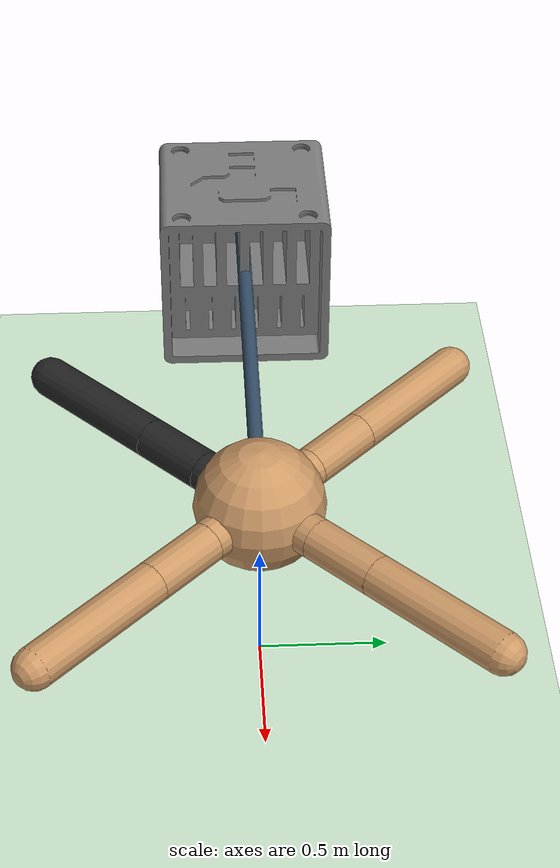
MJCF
<mujoco model="ant">
  <compiler angle="degree" coordinate="local" inertiafromgeom="true" />
  <option integrator="RK4" timestep="0.01" />
  <custom>
    <numeric data="0.0 0.0 0.55 1.0 0.0 0.0 0.0 0.0 1.0 0.0 -1.0 0.0 -1.0 0.0 1.0" name="init_qpos" />
  </custom>
  <default>
    <joint armature="1" damping="1" limited="true" />
    <geom conaffinity="0" condim="3" density="5.0" friction="0.79 0.3 0.3" margin="0.01" rgba="0.8 0.6 0.4 1" />
  </default>
  <asset>
    <texture builtin="gradient" height="100" rgb1="1 1 1" rgb2="0 0 0" type="skybox" width="100" />
    <texture builtin="flat" height="1278" mark="cross" markrgb="1 1 1" name="texgeom" random="0.01" rgb1="0.8 0.6 0.4" rgb2="0.8 0.6 0.4" type="cube" width="127" />
    <texture builtin="checker" height="100" name="texplane" rgb1="0 0 0" rgb2="0.8 0.8 0.8" type="2d" width="100" />
    <material name="MatPlane" reflectance="0.5" shininess="1" specular="1" texrepeat="60 60" texture="texplane" />
    <material name="geom" texture="texgeom" texuniform="true" />
  </asset>
  <compiler inertiafromgeom="auto" meshdir="meshes/" texturedir="./textures" />
  <include file="asset.xml" />
  <worldbody>
    <light cutoff="100" diffuse="1 1 1" dir="-0 0 -1.3" directional="true" exponent="1" pos="0 0 1.3" specular=".1 .1 .1" />
    <geom conaffinity="1" condim="3" material="MatPlane" name="floor" pos="0 0 0" rgba="0.8 0.9 0.8 1" size="40 40 40" type="plane" />
    <body name="torso" pos="0 0 0.75">
      <camera mode="trackcom" name="track" pos="0 -3 0.3" xyaxes="1 0 0 0 0 1" />
      <geom name="torso_geom" pos="0 0 0" size="0.25" type="sphere" />
      <joint armature="0" damping="0" limited="false" margin="0.01" name="root" pos="0 0 0" type="free" />
      <body name="front_left_leg" pos="0 0 0">
        <geom fromto="0.0 0.0 0.0 0.2 0.2 0.0" name="aux_1_geom" size="0.08" type="capsule" />
        <body name="aux_1" pos="0.2 0.2 0">
          <joint axis="0 0 1" name="hip_1" pos="0.0 0.0 0.0" range="-30 30" type="hinge" />
          <geom fromto="0.0 0.0 0.0 0.2 0.2 0.0" name="left_leg_geom" size="0.08" type="capsule" />
          <body pos="0.2 0.2 0">
            <joint axis="-1 1 0" name="ankle_1" pos="0.0 0.0 0.0" range="30 70" type="hinge" />
            <geom fromto="0.0 0.0 0.0 0.4 0.4 0.0" name="left_ankle_geom" size="0.08" type="capsule" />
          </body>
        </body>
      </body>
      <body name="front_right_leg" pos="0 0 0">
        <geom fromto="0.0 0.0 0.0 -0.2 0.2 0.0" name="aux_2_geom" size="0.08" type="capsule" />
        <body name="aux_2" pos="-0.2 0.2 0">
          <joint axis="0 0 1" name="hip_2" pos="0.0 0.0 0.0" range="-30 30" type="hinge" />
          <geom fromto="0.0 0.0 0.0 -0.2 0.2 0.0" name="right_leg_geom" size="0.08" type="capsule" />
          <body pos="-0.2 0.2 0">
            <joint axis="1 1 0" name="ankle_2" pos="0.0 0.0 0.0" range="-70 -30" type="hinge" />
            <geom fromto="0.0 0.0 0.0 -0.4 0.4 0.0" name="right_ankle_geom" size="0.08" type="capsule" />
          </body>
        </body>
      </body>
      <body name="back_leg" pos="0 0 0">
        <geom fromto="0.0 0.0 0.0 -0.2 -0.2 0.0" mass="0.62" name="aux_3_geom" rgba="0.14 0.14 0.14 1" size="0.08" type="capsule" />
        <body name="aux_3" pos="-0.2 -0.2 0">
          <joint axis="0 0 1" name="hip_3" pos="0.0 0.0 0.0" range="-30 30" type="hinge" />
          <geom fromto="0.0 0.0 0.0 -0.2 -0.2 0.0" mass="0.62" name="back_leg_geom" rgba="0.14 0.14 0.14 1" size="0.08" type="capsule" />
          <body pos="-0.2 -0.2 0">
            <joint axis="-1 1 0" name="ankle_3" pos="0.0 0.0 0.0" range="-70 -30" type="hinge" />
            <geom fromto="0.0 0.0 0.0 -0.4 -0.4 0.0" mass="0.62" name="third_ankle_geom" rgba="0.14 0.14 0.14 1" size="0.08" type="capsule" />
          </body>
        </body>
      </body>
      <body name="right_back_leg" pos="0 0 0">
        <geom fromto="0.0 0.0 0.0 0.2 -0.2 0.0" name="aux_4_geom" size="0.08" type="capsule" />
        <body name="aux_4" pos="0.2 -0.2 0">
          <joint axis="0 0 1" name="hip_4" pos="0.0 0.0 0.0" range="-30 30" type="hinge" />
          <geom fromto="0.0 0.0 0.0 0.2 -0.2 0.0" name="rightback_leg_geom" size="0.08" type="capsule" />
          <body pos="0.2 -0.2 0">
            <joint axis="1 1 0" name="ankle_4" pos="0.0 0.0 0.0" range="30 70" type="hinge" />
            <geom fromto="0.0 0.0 0.0 0.4 -0.4 0.0" name="fourth_ankle_geom" size="0.08" type="capsule" />
          </body>
        </body>
      </body>

      <body euler="0 90 0" name="line" pos="-1.0 0 0">
        <joint axis="0 1 0" name="line connection" pos="0 0 1.0 " range="-30 30" type="hinge" />
        <geom mass="0.001" name="line" rgba="0.2 0.3 0.4 1" size="0.03 1.0" type="cylinder" />
          <body euler="0 0 0" name="case" pos="0 0 -1.0">
            <joint axis="0 0 1" name="connection_1" pos="0 0 0" range="-45 45" type="hinge" />
            <joint axis="0 1 0" name="connection_2" pos="0 0 0" range="-45 45" type="hinge" />
            <geom mass="2.5435002159577804" mesh="Mario_case" name="case" pos="0 0 0" rgba="0.485 0.485 0.485 1" type="mesh" />
          </body>
      </body>

    </body>
  </worldbody>
  <actuator>
    <motor ctrllimited="true" ctrlrange="-1.0 1.0" gear="150" joint="hip_1" />
    <motor ctrllimited="true" ctrlrange="-1.0 1.0" gear="150" joint="ankle_1" />
    <motor ctrllimited="true" ctrlrange="-1.0 1.0" gear="150" joint="hip_2" />
    <motor ctrllimited="true" ctrlrange="-1.0 1.0" gear="150" joint="ankle_2" />
    <motor ctrllimited="true" ctrlrange="-1.0 1.0" gear="150" joint="hip_3" />
    <motor ctrllimited="true" ctrlrange="-1.0 1.0" gear="150" joint="ankle_3" />
    <motor ctrllimited="true" ctrlrange="-1.0 1.0" gear="150" joint="hip_4" />
    <motor ctrllimited="true" ctrlrange="-1.0 1.0" gear="150" joint="ankle_4" />
  </actuator>
</mujoco>

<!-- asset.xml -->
<mujoco>
    <asset>
        <mesh name="Mario_case" file="Mario_case.STL"/>
        <mesh name="Ship" file="ship.stl"/>
    </asset>
</mujoco>
